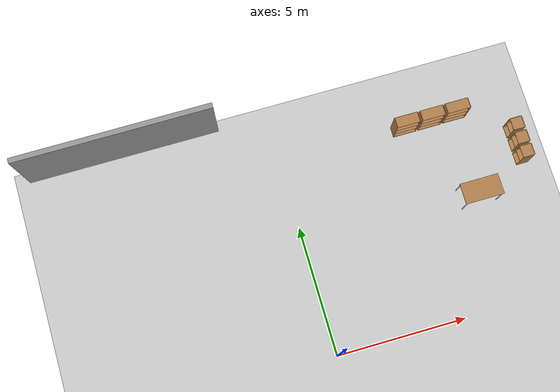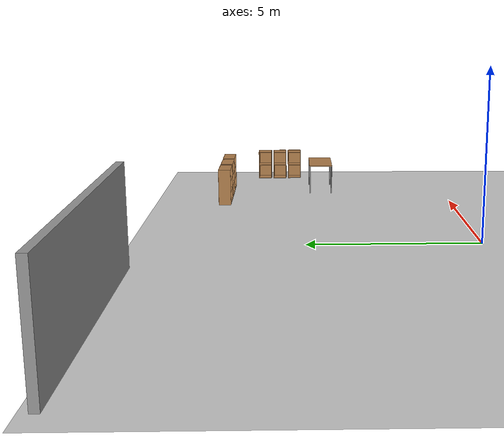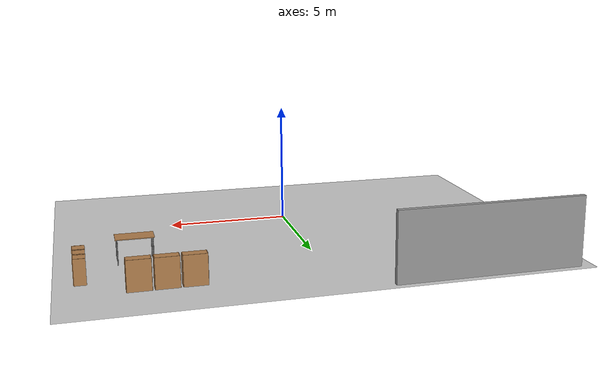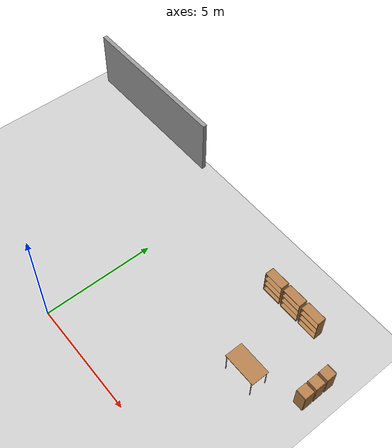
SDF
<sdf version="1.4">
 <world name="default">
  <light name="sun" type="directional">
   <pose>0 0 10 0 -0 0</pose>
   <diffuse>0.8 0.8 0.8 1</diffuse>
   <specular>0.2 0.2 0.2 1</specular>
   <attenuation>
    <range>1000</range>
    <constant>0.9</constant>
    <linear>0.01</linear>
    <quadratic>0.001</quadratic>
   </attenuation>
   <direction>-0.5 0.1 -0.9</direction>
  </light>
  <physics type="ode">
   <max_step_size>0.001</max_step_size>
   <real_time_factor>1</real_time_factor>
   <real_time_update_rate>1000</real_time_update_rate>
   <gravity>0 0 -9.8</gravity>
  </physics>
  <scene><ambient>0.4 0.4 0.4 1</ambient><background>0.7 0.7 0.7 1</background><shadows>1</shadows></scene>
  <spherical_coordinates>
   <surface_model>EARTH_WGS84</surface_model>
   <latitude_deg>0</latitude_deg>
   <longitude_deg>0</longitude_deg>
   <elevation>0</elevation>
   <heading_deg>0</heading_deg>
  </spherical_coordinates>
  <model name="my_ground_plane">
   <static>1</static>
   <link name="link">
    <collision name="collision">
     <geometry><plane><normal>0 0 1</normal><size>100 100</size></plane></geometry>
     <surface><friction><ode><mu>100</mu><mu2>50</mu2></ode></friction></surface>
    </collision>
    <visual name="visual">
     <cast_shadows>0</cast_shadows>
     <geometry><plane><normal>0 0 1</normal><size>20 20</size></plane></geometry>
     <material>
      <script>
       <uri>model://mygroundplane/materials/scripts</uri>
       <uri>model://mygroundplane/materials/textures</uri>
       <name>MyGroundPlane/Image</name>
      </script>
     </material>
    </visual>
    <velocity_decay><linear>0</linear><angular>0</angular></velocity_decay>
   </link>
  </model>
  <model name="bookshelf">
   <static>1</static>
   <link name="link">
    <inertial><mass>1</mass></inertial>
    <collision name="back">
     <pose>0 0.005 0.6 0 -0 0</pose>
     <geometry><box><size>0.9 0.01 1.2</size></box></geometry>
    </collision>
    <visual name="visual1">
     <pose>0 0.005 0.6 0 -0 0</pose>
     <geometry><box><size>0.9 0.01 1.2</size></box></geometry>
     <material>
      <script><uri>file://media/materials/scripts/gazebo.material</uri><name>Gazebo/Wood</name></script>
     </material>
    </visual>
    <collision name="left_side">
     <pose>0.45 -0.195 0.6 0 -0 0</pose>
     <geometry><box><size>0.02 0.4 1.2</size></box></geometry>
    </collision>
    <visual name="visual2">
     <pose>0.45 -0.195 0.6 0 -0 0</pose>
     <geometry><box><size>0.02 0.4 1.2</size></box></geometry>
     <material>
      <script><uri>file://media/materials/scripts/gazebo.material</uri><name>Gazebo/Wood</name></script>
     </material>
    </visual>
    <collision name="right_side">
     <pose>-0.45 -0.195 0.6 0 -0 0</pose>
     <geometry><box><size>0.02 0.4 1.2</size></box></geometry>
    </collision>
    <visual name="visual3">
     <pose>-0.45 -0.195 0.6 0 -0 0</pose>
     <geometry><box><size>0.02 0.4 1.2</size></box></geometry>
     <material>
      <script><uri>file://media/materials/scripts/gazebo.material</uri><name>Gazebo/Wood</name></script>
     </material>
    </visual>
    <collision name="bottom">
     <pose>0 -0.195 0.03 0 -0 0</pose>
     <geometry><box><size>0.88 0.4 0.06</size></box></geometry>
    </collision>
    <visual name="visual4">
     <pose>0 -0.195 0.03 0 -0 0</pose>
     <geometry><box><size>0.88 0.4 0.06</size></box></geometry>
     <material>
      <script><uri>file://media/materials/scripts/gazebo.material</uri><name>Gazebo/Wood</name></script>
     </material>
    </visual>
    <collision name="top">
     <pose>0 -0.195 1.19 0 -0 0</pose>
     <geometry><box><size>0.88 0.4 0.02</size></box></geometry>
    </collision>
    <visual name="visual5">
     <pose>0 -0.195 1.19 0 -0 0</pose>
     <geometry><box><size>0.88 0.4 0.02</size></box></geometry>
     <material>
      <script><uri>file://media/materials/scripts/gazebo.material</uri><name>Gazebo/Wood</name></script>
     </material>
    </visual>
    <collision name="low_shelf">
     <pose>0 -0.195 0.43 0 -0 0</pose>
     <geometry><box><size>0.88 0.4 0.02</size></box></geometry>
    </collision>
    <visual name="visual6">
     <pose>0 -0.195 0.43 0 -0 0</pose>
     <geometry><box><size>0.88 0.4 0.02</size></box></geometry>
     <material>
      <script><uri>file://media/materials/scripts/gazebo.material</uri><name>Gazebo/Wood</name></script>
     </material>
    </visual>
    <collision name="high_shelf">
     <pose>0 -0.195 0.8 0 -0 0</pose>
     <geometry><box><size>0.88 0.4 0.02</size></box></geometry>
    </collision>
    <visual name="visual7">
     <pose>0 -0.195 0.8 0 -0 0</pose>
     <geometry><box><size>0.88 0.4 0.02</size></box></geometry>
     <material>
      <script><uri>file://media/materials/scripts/gazebo.material</uri><name>Gazebo/Wood</name></script>
     </material>
    </visual>
    <velocity_decay><linear>0</linear><angular>0</angular></velocity_decay>
   </link>
   <pose>5 7.84752 0 0 -0 0</pose>
  </model>
  <model name="bookshelf_0">
   <static>1</static>
   <link name="link">
    <inertial><mass>1</mass></inertial>
    <collision name="back">
     <pose>0 0.005 0.6 0 -0 0</pose>
     <geometry><box><size>0.9 0.01 1.2</size></box></geometry>
    </collision>
    <visual name="visual1">
     <pose>0 0.005 0.6 0 -0 0</pose>
     <geometry><box><size>0.9 0.01 1.2</size></box></geometry>
     <material>
      <script><uri>file://media/materials/scripts/gazebo.material</uri><name>Gazebo/Wood</name></script>
     </material>
    </visual>
    <collision name="left_side">
     <pose>0.45 -0.195 0.6 0 -0 0</pose>
     <geometry><box><size>0.02 0.4 1.2</size></box></geometry>
    </collision>
    <visual name="visual2">
     <pose>0.45 -0.195 0.6 0 -0 0</pose>
     <geometry><box><size>0.02 0.4 1.2</size></box></geometry>
     <material>
      <script><uri>file://media/materials/scripts/gazebo.material</uri><name>Gazebo/Wood</name></script>
     </material>
    </visual>
    <collision name="right_side">
     <pose>-0.45 -0.195 0.6 0 -0 0</pose>
     <geometry><box><size>0.02 0.4 1.2</size></box></geometry>
    </collision>
    <visual name="visual3">
     <pose>-0.45 -0.195 0.6 0 -0 0</pose>
     <geometry><box><size>0.02 0.4 1.2</size></box></geometry>
     <material>
      <script><uri>file://media/materials/scripts/gazebo.material</uri><name>Gazebo/Wood</name></script>
     </material>
    </visual>
    <collision name="bottom">
     <pose>0 -0.195 0.03 0 -0 0</pose>
     <geometry><box><size>0.88 0.4 0.06</size></box></geometry>
    </collision>
    <visual name="visual4">
     <pose>0 -0.195 0.03 0 -0 0</pose>
     <geometry><box><size>0.88 0.4 0.06</size></box></geometry>
     <material>
      <script><uri>file://media/materials/scripts/gazebo.material</uri><name>Gazebo/Wood</name></script>
     </material>
    </visual>
    <collision name="top">
     <pose>0 -0.195 1.19 0 -0 0</pose>
     <geometry><box><size>0.88 0.4 0.02</size></box></geometry>
    </collision>
    <visual name="visual5">
     <pose>0 -0.195 1.19 0 -0 0</pose>
     <geometry><box><size>0.88 0.4 0.02</size></box></geometry>
     <material>
      <script><uri>file://media/materials/scripts/gazebo.material</uri><name>Gazebo/Wood</name></script>
     </material>
    </visual>
    <collision name="low_shelf">
     <pose>0 -0.195 0.43 0 -0 0</pose>
     <geometry><box><size>0.88 0.4 0.02</size></box></geometry>
    </collision>
    <visual name="visual6">
     <pose>0 -0.195 0.43 0 -0 0</pose>
     <geometry><box><size>0.88 0.4 0.02</size></box></geometry>
     <material>
      <script><uri>file://media/materials/scripts/gazebo.material</uri><name>Gazebo/Wood</name></script>
     </material>
    </visual>
    <collision name="high_shelf">
     <pose>0 -0.195 0.8 0 -0 0</pose>
     <geometry><box><size>0.88 0.4 0.02</size></box></geometry>
    </collision>
    <visual name="visual7">
     <pose>0 -0.195 0.8 0 -0 0</pose>
     <geometry><box><size>0.88 0.4 0.02</size></box></geometry>
     <material>
      <script><uri>file://media/materials/scripts/gazebo.material</uri><name>Gazebo/Wood</name></script>
     </material>
    </visual>
    <velocity_decay><linear>0</linear><angular>0</angular></velocity_decay>
   </link>
   <pose>6 7.84822 0 0 -0 0</pose>
  </model>
  <model name="bookshelf_1">
   <static>1</static>
   <link name="link">
    <inertial><mass>1</mass></inertial>
    <collision name="back">
     <pose>0 0.005 0.6 0 -0 0</pose>
     <geometry><box><size>0.9 0.01 1.2</size></box></geometry>
    </collision>
    <visual name="visual1">
     <pose>0 0.005 0.6 0 -0 0</pose>
     <geometry><box><size>0.9 0.01 1.2</size></box></geometry>
     <material>
      <script><uri>file://media/materials/scripts/gazebo.material</uri><name>Gazebo/Wood</name></script>
     </material>
    </visual>
    <collision name="left_side">
     <pose>0.45 -0.195 0.6 0 -0 0</pose>
     <geometry><box><size>0.02 0.4 1.2</size></box></geometry>
    </collision>
    <visual name="visual2">
     <pose>0.45 -0.195 0.6 0 -0 0</pose>
     <geometry><box><size>0.02 0.4 1.2</size></box></geometry>
     <material>
      <script><uri>file://media/materials/scripts/gazebo.material</uri><name>Gazebo/Wood</name></script>
     </material>
    </visual>
    <collision name="right_side">
     <pose>-0.45 -0.195 0.6 0 -0 0</pose>
     <geometry><box><size>0.02 0.4 1.2</size></box></geometry>
    </collision>
    <visual name="visual3">
     <pose>-0.45 -0.195 0.6 0 -0 0</pose>
     <geometry><box><size>0.02 0.4 1.2</size></box></geometry>
     <material>
      <script><uri>file://media/materials/scripts/gazebo.material</uri><name>Gazebo/Wood</name></script>
     </material>
    </visual>
    <collision name="bottom">
     <pose>0 -0.195 0.03 0 -0 0</pose>
     <geometry><box><size>0.88 0.4 0.06</size></box></geometry>
    </collision>
    <visual name="visual4">
     <pose>0 -0.195 0.03 0 -0 0</pose>
     <geometry><box><size>0.88 0.4 0.06</size></box></geometry>
     <material>
      <script><uri>file://media/materials/scripts/gazebo.material</uri><name>Gazebo/Wood</name></script>
     </material>
    </visual>
    <collision name="top">
     <pose>0 -0.195 1.19 0 -0 0</pose>
     <geometry><box><size>0.88 0.4 0.02</size></box></geometry>
    </collision>
    <visual name="visual5">
     <pose>0 -0.195 1.19 0 -0 0</pose>
     <geometry><box><size>0.88 0.4 0.02</size></box></geometry>
     <material>
      <script><uri>file://media/materials/scripts/gazebo.material</uri><name>Gazebo/Wood</name></script>
     </material>
    </visual>
    <collision name="low_shelf">
     <pose>0 -0.195 0.43 0 -0 0</pose>
     <geometry><box><size>0.88 0.4 0.02</size></box></geometry>
    </collision>
    <visual name="visual6">
     <pose>0 -0.195 0.43 0 -0 0</pose>
     <geometry><box><size>0.88 0.4 0.02</size></box></geometry>
     <material>
      <script><uri>file://media/materials/scripts/gazebo.material</uri><name>Gazebo/Wood</name></script>
     </material>
    </visual>
    <collision name="high_shelf">
     <pose>0 -0.195 0.8 0 -0 0</pose>
     <geometry><box><size>0.88 0.4 0.02</size></box></geometry>
    </collision>
    <visual name="visual7">
     <pose>0 -0.195 0.8 0 -0 0</pose>
     <geometry><box><size>0.88 0.4 0.02</size></box></geometry>
     <material>
      <script><uri>file://media/materials/scripts/gazebo.material</uri><name>Gazebo/Wood</name></script>
     </material>
    </visual>
    <velocity_decay><linear>0</linear><angular>0</angular></velocity_decay>
   </link>
   <pose>7 7.85719 0 0 -0 0</pose>
  </model>
  <model name="cabinet">
   <static>1</static>
   <link name="cabinet_bottom_plate">
    <inertial>
     <pose>0 0 -1 0 -0 0</pose>
     <inertia><ixx>2.05</ixx><ixy>0</ixy><ixz>0</ixz><iyy>2.05</iyy><iyz>0</iyz><izz>2.05</izz></inertia>
     <mass>25</mass>
    </inertial>
    <collision name="cabinet_bottom_plate_geom">
     <pose>0 0 0.01 0 -0 0</pose>
     <geometry><box><size>0.45 0.45 0.02</size></box></geometry>
    </collision>
    <visual name="cabinet_bottom_plate_geom_visual">
     <pose>0 0 0.01 0 -0 0</pose>
     <geometry><box><size>0.45 0.45 0.02</size></box></geometry>
     <material>
      <script><uri>file://media/materials/scripts/gazebo.material</uri><name>Gazebo/Wood</name></script>
     </material>
    </visual>
    <collision name="cabinet_bottom_plate_geom_cabinet_back_plate">
     <pose>0.235 0 0.51 0 -0 0</pose>
     <geometry><box><size>0.02 0.45 1.02</size></box></geometry>
    </collision>
    <visual name="cabinet_bottom_plate_geom_cabinet_back_plate_visual">
     <pose>0.235 0 0.51 0 -0 0</pose>
     <geometry><box><size>0.02 0.45 1.02</size></box></geometry>
     <material>
      <script><uri>file://media/materials/scripts/gazebo.material</uri><name>Gazebo/Wood</name></script>
     </material>
    </visual>
    <collision name="cabinet_bottom_plate_geom_cabinet_left_plate">
     <pose>0 0.235 0.51 0 -0 0</pose>
     <geometry><box><size>0.45 0.02 1.02</size></box></geometry>
    </collision>
    <visual name="cabinet_bottom_plate_geom_cabinet_left_plate_visual">
     <pose>0 0.235 0.51 0 -0 0</pose>
     <geometry><box><size>0.45 0.02 1.02</size></box></geometry>
     <material>
      <script><uri>file://media/materials/scripts/gazebo.material</uri><name>Gazebo/Wood</name></script>
     </material>
    </visual>
    <collision name="cabinet_bottom_plate_geom_cabinet_middle_plate">
     <pose>0 0 0.51 0 -0 0</pose>
     <geometry><box><size>0.45 0.45 0.02</size></box></geometry>
    </collision>
    <visual name="cabinet_bottom_plate_geom_cabinet_middle_plate_visual">
     <pose>0 0 0.51 0 -0 0</pose>
     <geometry><box><size>0.45 0.45 0.02</size></box></geometry>
     <material>
      <script><uri>file://media/materials/scripts/gazebo.material</uri><name>Gazebo/Wood</name></script>
     </material>
    </visual>
    <collision name="cabinet_bottom_plate_geom_cabinet_right_plate">
     <pose>0 -0.235 0.51 0 -0 0</pose>
     <geometry><box><size>0.45 0.02 1.02</size></box></geometry>
    </collision>
    <visual name="cabinet_bottom_plate_geom_cabinet_right_plate_visual">
     <pose>0 -0.235 0.51 0 -0 0</pose>
     <geometry><box><size>0.45 0.02 1.02</size></box></geometry>
     <material>
      <script><uri>file://media/materials/scripts/gazebo.material</uri><name>Gazebo/Wood</name></script>
     </material>
    </visual>
    <collision name="cabinet_bottom_plate_geom_cabinet_top_plate">
     <pose>0 0 1.01 0 -0 0</pose>
     <geometry><box><size>0.45 0.45 0.02</size></box></geometry>
    </collision>
    <visual name="cabinet_bottom_plate_geom_cabinet_top_plate_visual">
     <pose>0 0 1.01 0 -0 0</pose>
     <geometry><box><size>0.45 0.45 0.02</size></box></geometry>
     <material>
      <script><uri>file://media/materials/scripts/gazebo.material</uri><name>Gazebo/Wood</name></script>
     </material>
    </visual>
    <velocity_decay><linear>0</linear><angular>0</angular></velocity_decay>
   </link>
   <pose>9 5.31851 0 0 -0 0</pose>
  </model>
  <model name="cabinet_0">
   <static>1</static>
   <link name="cabinet_bottom_plate">
    <inertial>
     <pose>0 0 -1 0 -0 0</pose>
     <inertia><ixx>2.05</ixx><ixy>0</ixy><ixz>0</ixz><iyy>2.05</iyy><iyz>0</iyz><izz>2.05</izz></inertia>
     <mass>25</mass>
    </inertial>
    <collision name="cabinet_bottom_plate_geom">
     <pose>0 0 0.01 0 -0 0</pose>
     <geometry><box><size>0.45 0.45 0.02</size></box></geometry>
    </collision>
    <visual name="cabinet_bottom_plate_geom_visual">
     <pose>0 0 0.01 0 -0 0</pose>
     <geometry><box><size>0.45 0.45 0.02</size></box></geometry>
     <material>
      <script><uri>file://media/materials/scripts/gazebo.material</uri><name>Gazebo/Wood</name></script>
     </material>
    </visual>
    <collision name="cabinet_bottom_plate_geom_cabinet_back_plate">
     <pose>0.235 0 0.51 0 -0 0</pose>
     <geometry><box><size>0.02 0.45 1.02</size></box></geometry>
    </collision>
    <visual name="cabinet_bottom_plate_geom_cabinet_back_plate_visual">
     <pose>0.235 0 0.51 0 -0 0</pose>
     <geometry><box><size>0.02 0.45 1.02</size></box></geometry>
     <material>
      <script><uri>file://media/materials/scripts/gazebo.material</uri><name>Gazebo/Wood</name></script>
     </material>
    </visual>
    <collision name="cabinet_bottom_plate_geom_cabinet_left_plate">
     <pose>0 0.235 0.51 0 -0 0</pose>
     <geometry><box><size>0.45 0.02 1.02</size></box></geometry>
    </collision>
    <visual name="cabinet_bottom_plate_geom_cabinet_left_plate_visual">
     <pose>0 0.235 0.51 0 -0 0</pose>
     <geometry><box><size>0.45 0.02 1.02</size></box></geometry>
     <material>
      <script><uri>file://media/materials/scripts/gazebo.material</uri><name>Gazebo/Wood</name></script>
     </material>
    </visual>
    <collision name="cabinet_bottom_plate_geom_cabinet_middle_plate">
     <pose>0 0 0.51 0 -0 0</pose>
     <geometry><box><size>0.45 0.45 0.02</size></box></geometry>
    </collision>
    <visual name="cabinet_bottom_plate_geom_cabinet_middle_plate_visual">
     <pose>0 0 0.51 0 -0 0</pose>
     <geometry><box><size>0.45 0.45 0.02</size></box></geometry>
     <material>
      <script><uri>file://media/materials/scripts/gazebo.material</uri><name>Gazebo/Wood</name></script>
     </material>
    </visual>
    <collision name="cabinet_bottom_plate_geom_cabinet_right_plate">
     <pose>0 -0.235 0.51 0 -0 0</pose>
     <geometry><box><size>0.45 0.02 1.02</size></box></geometry>
    </collision>
    <visual name="cabinet_bottom_plate_geom_cabinet_right_plate_visual">
     <pose>0 -0.235 0.51 0 -0 0</pose>
     <geometry><box><size>0.45 0.02 1.02</size></box></geometry>
     <material>
      <script><uri>file://media/materials/scripts/gazebo.material</uri><name>Gazebo/Wood</name></script>
     </material>
    </visual>
    <collision name="cabinet_bottom_plate_geom_cabinet_top_plate">
     <pose>0 0 1.01 0 -0 0</pose>
     <geometry><box><size>0.45 0.45 0.02</size></box></geometry>
    </collision>
    <visual name="cabinet_bottom_plate_geom_cabinet_top_plate_visual">
     <pose>0 0 1.01 0 -0 0</pose>
     <geometry><box><size>0.45 0.45 0.02</size></box></geometry>
     <material>
      <script><uri>file://media/materials/scripts/gazebo.material</uri><name>Gazebo/Wood</name></script>
     </material>
    </visual>
    <velocity_decay><linear>0</linear><angular>0</angular></velocity_decay>
   </link>
   <pose>9 6.43386 0 0 -0 0</pose>
  </model>
  <model name="cabinet_1">
   <static>1</static>
   <link name="cabinet_bottom_plate">
    <inertial>
     <pose>0 0 -1 0 -0 0</pose>
     <inertia><ixx>2.05</ixx><ixy>0</ixy><ixz>0</ixz><iyy>2.05</iyy><iyz>0</iyz><izz>2.05</izz></inertia>
     <mass>25</mass>
    </inertial>
    <collision name="cabinet_bottom_plate_geom">
     <pose>0 0 0.01 0 -0 0</pose>
     <geometry><box><size>0.45 0.45 0.02</size></box></geometry>
    </collision>
    <visual name="cabinet_bottom_plate_geom_visual">
     <pose>0 0 0.01 0 -0 0</pose>
     <geometry><box><size>0.45 0.45 0.02</size></box></geometry>
     <material>
      <script><uri>file://media/materials/scripts/gazebo.material</uri><name>Gazebo/Wood</name></script>
     </material>
    </visual>
    <collision name="cabinet_bottom_plate_geom_cabinet_back_plate">
     <pose>0.235 0 0.51 0 -0 0</pose>
     <geometry><box><size>0.02 0.45 1.02</size></box></geometry>
    </collision>
    <visual name="cabinet_bottom_plate_geom_cabinet_back_plate_visual">
     <pose>0.235 0 0.51 0 -0 0</pose>
     <geometry><box><size>0.02 0.45 1.02</size></box></geometry>
     <material>
      <script><uri>file://media/materials/scripts/gazebo.material</uri><name>Gazebo/Wood</name></script>
     </material>
    </visual>
    <collision name="cabinet_bottom_plate_geom_cabinet_left_plate">
     <pose>0 0.235 0.51 0 -0 0</pose>
     <geometry><box><size>0.45 0.02 1.02</size></box></geometry>
    </collision>
    <visual name="cabinet_bottom_plate_geom_cabinet_left_plate_visual">
     <pose>0 0.235 0.51 0 -0 0</pose>
     <geometry><box><size>0.45 0.02 1.02</size></box></geometry>
     <material>
      <script><uri>file://media/materials/scripts/gazebo.material</uri><name>Gazebo/Wood</name></script>
     </material>
    </visual>
    <collision name="cabinet_bottom_plate_geom_cabinet_middle_plate">
     <pose>0 0 0.51 0 -0 0</pose>
     <geometry><box><size>0.45 0.45 0.02</size></box></geometry>
    </collision>
    <visual name="cabinet_bottom_plate_geom_cabinet_middle_plate_visual">
     <pose>0 0 0.51 0 -0 0</pose>
     <geometry><box><size>0.45 0.45 0.02</size></box></geometry>
     <material>
      <script><uri>file://media/materials/scripts/gazebo.material</uri><name>Gazebo/Wood</name></script>
     </material>
    </visual>
    <collision name="cabinet_bottom_plate_geom_cabinet_right_plate">
     <pose>0 -0.235 0.51 0 -0 0</pose>
     <geometry><box><size>0.45 0.02 1.02</size></box></geometry>
    </collision>
    <visual name="cabinet_bottom_plate_geom_cabinet_right_plate_visual">
     <pose>0 -0.235 0.51 0 -0 0</pose>
     <geometry><box><size>0.45 0.02 1.02</size></box></geometry>
     <material>
      <script><uri>file://media/materials/scripts/gazebo.material</uri><name>Gazebo/Wood</name></script>
     </material>
    </visual>
    <collision name="cabinet_bottom_plate_geom_cabinet_top_plate">
     <pose>0 0 1.01 0 -0 0</pose>
     <geometry><box><size>0.45 0.45 0.02</size></box></geometry>
    </collision>
    <visual name="cabinet_bottom_plate_geom_cabinet_top_plate_visual">
     <pose>0 0 1.01 0 -0 0</pose>
     <geometry><box><size>0.45 0.45 0.02</size></box></geometry>
     <material>
      <script><uri>file://media/materials/scripts/gazebo.material</uri><name>Gazebo/Wood</name></script>
     </material>
    </visual>
    <velocity_decay><linear>0</linear><angular>0</angular></velocity_decay>
   </link>
   <pose>9 5.87136 0 0 -0 0</pose>
  </model>
  <model name="grey_wall">
   <static>1</static>
   <link name="link">
    <pose>0 0 1.4 0 -0 0</pose>
    <collision name="collision"><geometry><box><size>7.5 0.2 2.8</size></box></geometry></collision>
    <visual name="visual">
     <cast_shadows>0</cast_shadows>
     <geometry><box><size>7.5 0.2 2.8</size></box></geometry>
     <material>
      <script>
       <uri>model://grey_wall/materials/scripts</uri>
       <uri>model://grey_wall/materials/textures</uri>
       <name>vrc/grey_wall</name>
      </script>
     </material>
    </visual>
    <velocity_decay><linear>0</linear><angular>0</angular></velocity_decay>
   </link>
   <pose>-5.68394 9.67403 0 0 -0 0</pose>
  </model>
  <model name="table">
   <static>1</static>
   <link name="link">
    <collision name="surface">
     <pose>0 0 1 0 -0 0</pose>
     <geometry><box><size>1.5 0.8 0.03</size></box></geometry>
     <surface><friction><ode><mu>0.6</mu><mu2>0.6</mu2></ode></friction></surface>
    </collision>
    <visual name="visual1">
     <pose>0 0 1 0 -0 0</pose>
     <geometry><box><size>1.5 0.8 0.03</size></box></geometry>
     <material>
      <script><uri>file://media/materials/scripts/gazebo.material</uri><name>Gazebo/Wood</name></script>
     </material>
    </visual>
    <collision name="front_left_leg">
     <pose>0.68 0.38 0.5 0 -0 0</pose>
     <geometry><cylinder><radius>0.02</radius><length>1</length></cylinder></geometry>
    </collision>
    <visual name="front_left_leg">
     <pose>0.68 0.38 0.5 0 -0 0</pose>
     <geometry><cylinder><radius>0.02</radius><length>1</length></cylinder></geometry>
     <material>
      <script><uri>file://media/materials/scripts/gazebo.material</uri><name>Gazebo/Grey</name></script>
     </material>
    </visual>
    <collision name="front_right_leg">
     <pose>0.68 -0.38 0.5 0 -0 0</pose>
     <geometry><cylinder><radius>0.02</radius><length>1</length></cylinder></geometry>
    </collision>
    <visual name="front_right_leg">
     <pose>0.68 -0.38 0.5 0 -0 0</pose>
     <geometry><cylinder><radius>0.02</radius><length>1</length></cylinder></geometry>
     <material>
      <script><uri>file://media/materials/scripts/gazebo.material</uri><name>Gazebo/Grey</name></script>
     </material>
    </visual>
    <collision name="back_right_leg">
     <pose>-0.68 -0.38 0.5 0 -0 0</pose>
     <geometry><cylinder><radius>0.02</radius><length>1</length></cylinder></geometry>
    </collision>
    <visual name="back_right_leg">
     <pose>-0.68 -0.38 0.5 0 -0 0</pose>
     <geometry><cylinder><radius>0.02</radius><length>1</length></cylinder></geometry>
     <material>
      <script><uri>file://media/materials/scripts/gazebo.material</uri><name>Gazebo/Grey</name></script>
     </material>
    </visual>
    <collision name="back_left_leg">
     <pose>-0.68 0.38 0.5 0 -0 0</pose>
     <geometry><cylinder><radius>0.02</radius><length>1</length></cylinder></geometry>
    </collision>
    <visual name="back_left_leg">
     <pose>-0.68 0.38 0.5 0 -0 0</pose>
     <geometry><cylinder><radius>0.02</radius><length>1</length></cylinder></geometry>
     <material>
      <script><uri>file://media/materials/scripts/gazebo.material</uri><name>Gazebo/Grey</name></script>
     </material>
    </visual>
    <velocity_decay><linear>0</linear><angular>0</angular></velocity_decay>
   </link>
   <pose>6.89767 4.37981 0 0 -0 0</pose>
  </model>
 </world>
</sdf>
